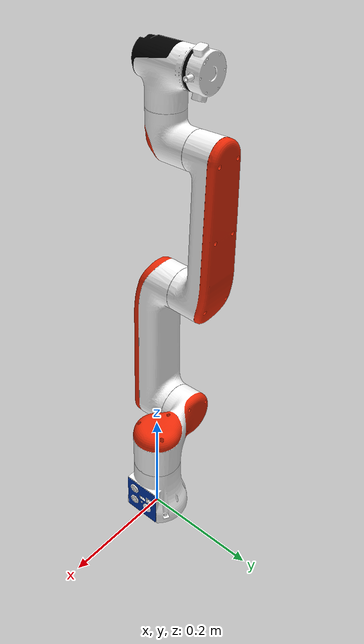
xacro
<?xml version='1.0' encoding='utf-8'?>
<robot name="rm_eco65_description">
  <link name="baselink">
    <inertial>
      <origin rpy="0 0 0" xyz="0.0004101 -8.4575E-05 0.050471" />
      <mass value="2" />
      <inertia ixx="0.0011075" ixy="-3.3776E-06" ixz="2.5165E-05" iyy="0.001109" iyz="-1.7082E-06" izz="0.00075402" />
    </inertial>
    <collision>
      <origin rpy="0 0 0" xyz="0 0 0" />
      <geometry>
        <mesh filename="package://rm_description/meshes/rm_eco65_arm/baselink.STL" />
      </geometry>
    </collision>
    <visual>
      <origin xyz="0 0 0" rpy="0 0 0" />
      <geometry>
        <mesh filename="package://rm_description/meshes/dae/base/base_v1.0.dae" />
      </geometry>
    </visual>
  </link>
  <link name="Link1">
    <inertial>
      <origin rpy="0 0 0" xyz="-1.105E-02 2.736E-05 -3.347E-02" />
      <mass value="1.507" />
      <inertia ixx="1.958E-03" ixy="-2.333E-05" ixz="5.324E-04" iyy="3.101E-03" iyz="9.135E-06" izz="2.427E-03" />
    </inertial>
    <collision>
      <origin rpy="0 0 0" xyz="0 0 0" />
      <geometry>
        <mesh filename="package://rm_description/meshes/rm_eco65_arm/Link1.STL" />
      </geometry>
    </collision>
    <visual>
      <origin xyz="0 0 0" rpy="0 0 0" />
      <geometry>
        <mesh filename="package://rm_description/meshes/dae/eco65/link_1.dae" />
      </geometry>
    </visual>
  </link>
  <joint name="joint1" type="revolute">
    <origin rpy="0 0 0" xyz="0 0 0.1625" />
    <parent link="baselink" />
    <child link="Link1" />
    <axis xyz="0 0 1" />
    <limit effort="60" lower="-3.106" upper="3.106" velocity="3.14" />
  </joint>
  <link name="Link2">
    <inertial>
      <origin rpy="0 0 0" xyz="5.818E-02 -1.163E-05 -5.236E-02" />
      <mass value="2.0227" />
      <inertia ixx="2.274E-03" ixy="-6.214E-06" ixz="1.441559E-03" iyy="1.731147E-02" iyz="-2.9598E-06" izz="1.7225523E-02" />
    </inertial>
    <collision>
      <origin rpy="0 0 0" xyz="0 0 0" />
      <geometry>
        <mesh filename="package://rm_description/meshes/rm_eco65_arm/Link2.STL" />
      </geometry>
    </collision>
    <visual>
      <origin xyz="0 0 0" rpy="0 0 0" />
      <geometry>
        <mesh filename="package://rm_description/meshes/dae/eco65/link_2.dae" />
      </geometry>
    </visual>
  </link>
  <joint name="joint2" type="revolute">
    <origin rpy="0 -1.5708 -1.5708" xyz="-0.086 0 0" />
    <parent link="Link1" />
    <child link="Link2" />
    <axis xyz="0 0 1" />
    <limit effort="60" lower="-3.106" upper="2.356" velocity="3.14" />
  </joint>
  <link name="Link3">
    <inertial>
      <origin rpy="0 0 0" xyz="9.2768E-02 -9.3866E-05 1.81E-03" />
      <mass value="1.8858" />
      <inertia ixx="1.9164989E-03" ixy="-3.27E-06" ixz="-1.6941203E-03" iyy="2.2483104E-02" iyz="4.50616E-06" izz="2.1892837E-02" />
    </inertial>
    <collision>
      <origin rpy="0 0 0" xyz="0 0 0" />
      <geometry>
        <mesh filename="package://rm_description/meshes/rm_eco65_arm/Link3.STL" />
      </geometry>
    </collision>
    <visual>
      <origin xyz="0 0 0" rpy="0 0 0" />
      <geometry>
        <mesh filename="package://rm_description/meshes/dae/eco65/link_3.dae" />
      </geometry>
    </visual>
  </link>
  <joint name="joint3" type="revolute">
    <origin rpy="0 0 0" xyz="0.26 0 0" />
    <parent link="Link2" />
    <child link="Link3" />
    <axis xyz="0 0 1" />
    <limit effort="30" lower="-2.792" upper="2.53" velocity="3.14" />
  </joint>
  <link name="Link4">
    <inertial>
      <origin rpy="0 0 0" xyz="1.1437E-07 -0.0098794 0.013445" />
      <mass value="0.27261" />
      <inertia ixx="0.00023835" ixy="1.6845E-09" ixz="6.2757E-09" iyy="0.00019072" iyz="4.0013E-05" izz="0.0001713" />
    </inertial>
    <collision>
      <origin rpy="0 0 0" xyz="0 0 0" />
      <geometry>
        <mesh filename="package://rm_description/meshes/rm_eco65_arm/Link4.STL" />
      </geometry>
    </collision>
    <visual>
      <origin xyz="0 0 0" rpy="0 0 0" />
      <geometry>
        <mesh filename="package://rm_description/meshes/dae/eco65/link_4.dae" />
      </geometry>
    </visual>
  </link>
  <joint name="joint4" type="revolute">
    <origin rpy="0 0 1.5708" xyz="0.24 0 -0.05888" />
    <parent link="Link3" />
    <child link="Link4" />
    <axis xyz="0 0 1" />
    <limit effort="10" lower="-3.106" upper="3.106" velocity="3.14" />
  </joint>
  <link name="Link5">
    <inertial>
      <origin rpy="0 0 0" xyz="-3.97E-05 2.2647E-02 -7.365E-03" />
      <mass value="0.641" />
      <inertia ixx="6.2339218E-04" ixy="-5.31226E-07" ixz="-5.61849E-07" iyy="3.9337546E-04" iyz="-1.1339817E-04" izz="5.5741485E-04" />
    </inertial>
    <collision>
      <origin rpy="0 0 0" xyz="0 0 0" />
      <geometry>
        <mesh filename="package://rm_description/meshes/rm_eco65_arm/Link5.STL" />
      </geometry>
    </collision>
    <visual>
      <origin xyz="0 0 0" rpy="0 0 0" />
      <geometry>
        <mesh filename="package://rm_description/meshes/dae/eco65/link_5.dae" />
      </geometry>
    </visual>
  </link>
  <joint name="joint5" type="revolute">
    <origin rpy="1.5708 0 0" xyz="0 -0.11 0" />
    <parent link="Link4" />
    <child link="Link5" />
    <axis xyz="0 0 1" />
    <limit effort="10" lower="-3.106" upper="3.106" velocity="3.14" />
  </joint>
  <link name="Link6">
    <inertial>
      <origin rpy="0 0 0" xyz="4.478E-04 -2.134E-04 -1.033579E-02" />
      <mass value="0.0857" />
      <inertia ixx="3.302707E-05" ixy="-2.5421576E-06" ixz="1.0241783E-07" iyy="3.0206675E-05" iyz="-8.4126596E-08" izz="5.1459675E-05" />
    </inertial>
    <collision>
      <origin rpy="0 0 0" xyz="0 0 0" />
      <geometry>
        <mesh filename="package://rm_description/meshes/rm_eco65_arm/Link6.STL" />
      </geometry>
    </collision>
    <visual>
      <origin xyz="0 0 0" rpy="0 0 0" />
      <geometry>
        <mesh filename="package://rm_description/meshes/dae/eco65/link_6.dae" />
      </geometry>
    </visual>
  </link>
  <joint name="joint6" type="revolute">
    <origin rpy="-1.5708 0 0" xyz="0 0.0795 0" />
    <parent link="Link5" />
    <child link="Link6" />
    <axis xyz="0 0 1" />
    <limit effort="10" lower="-6.28" upper="6.28" velocity="3.14" />
  </joint>
</robot>
